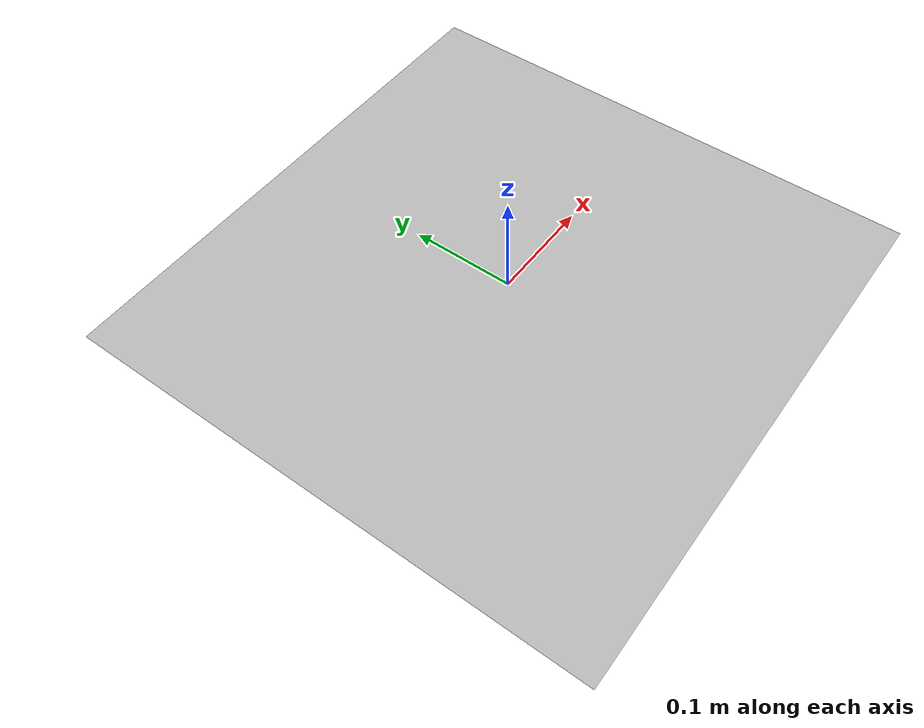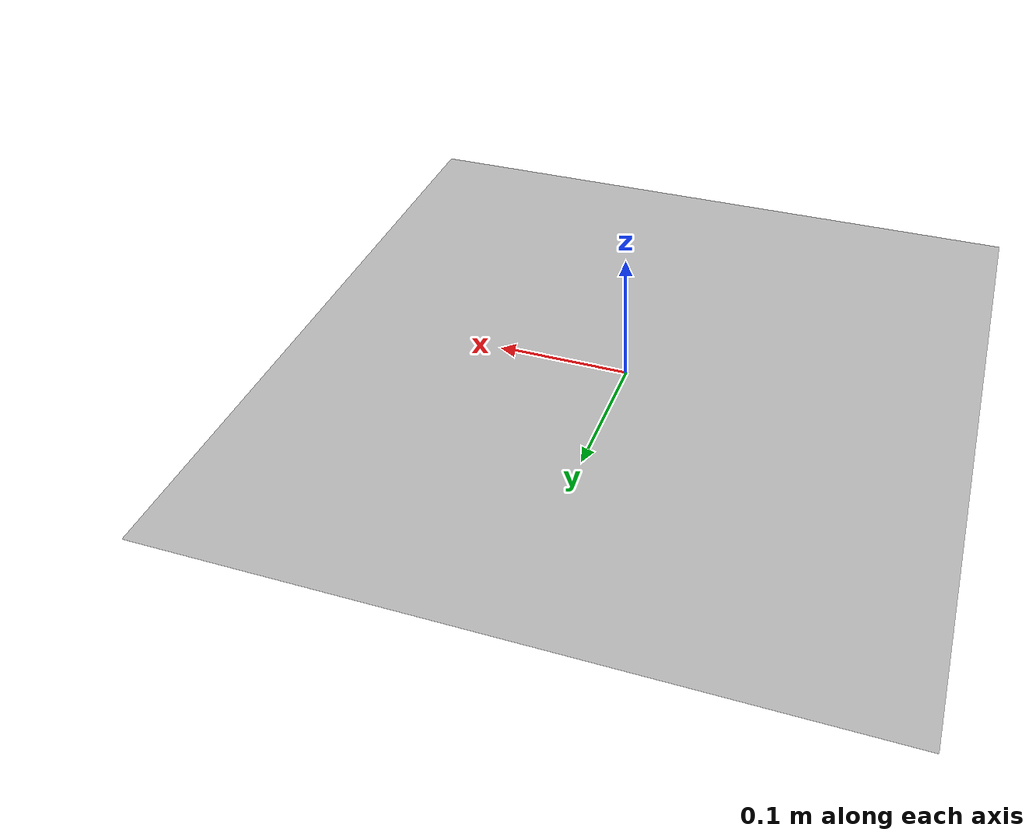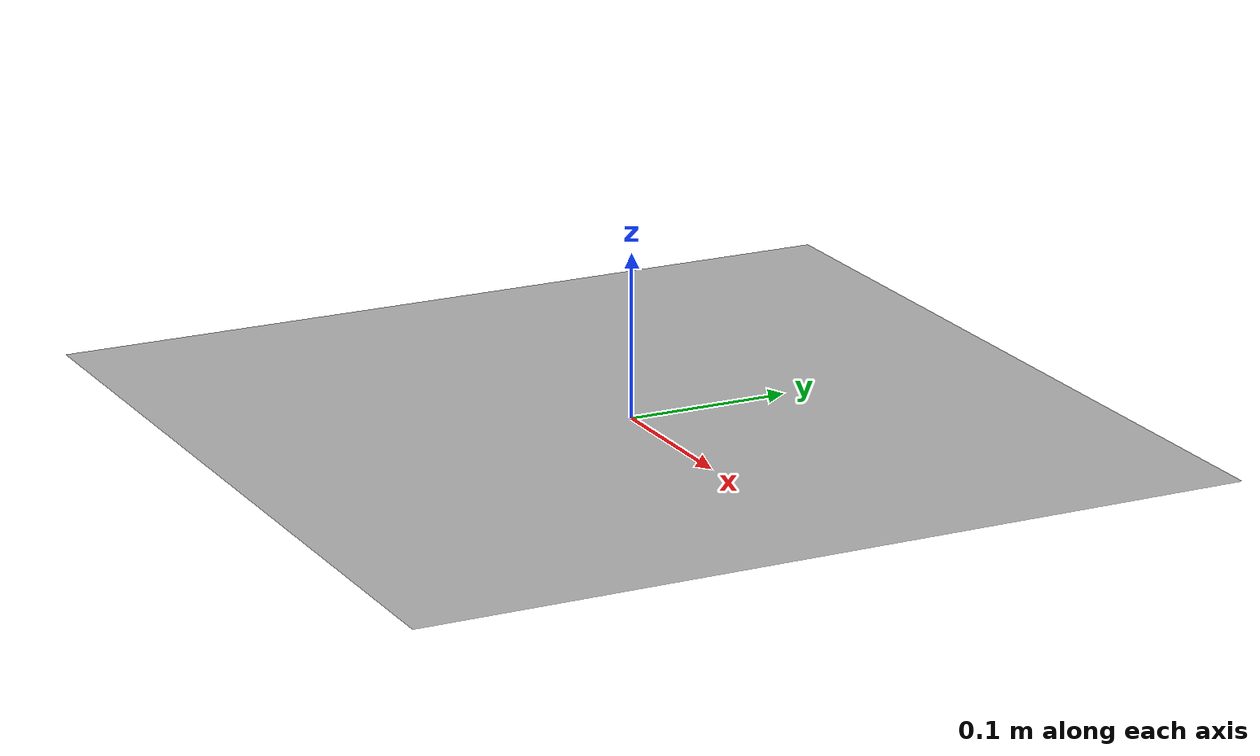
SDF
<?xml version="1.0"?>
<sdf version='1.4'>
    <model name="piece_1">
        <static>1</static>
        <link name="link_1">
            <visual name='visual'>
                <pose frame=''>0 0 0.0015 0 0 0</pose>
                <geometry>
                    <mesh>
                        <uri>model://puzzletrack_piece_1/meshes/piece_1.dae</uri>
                    </mesh>
                </geometry>
            </visual>
            <!-- This model does not include a collision definition because it is supposed to be
            used as ground-->
        </link>
    </model>
</sdf>
